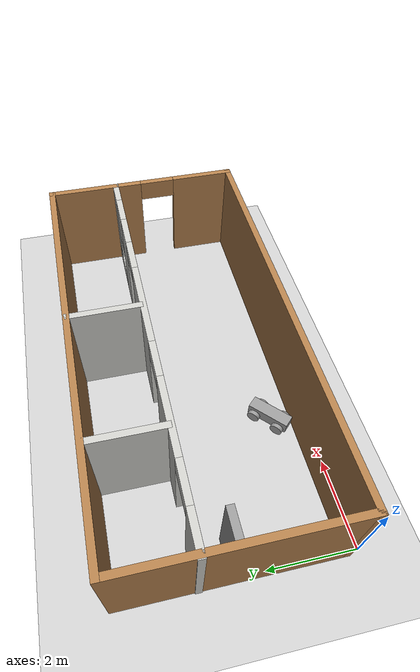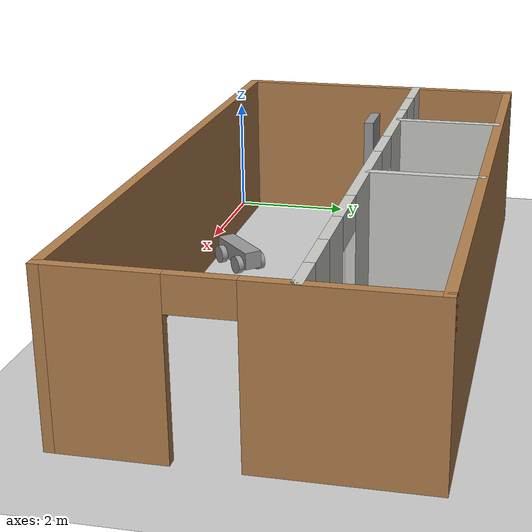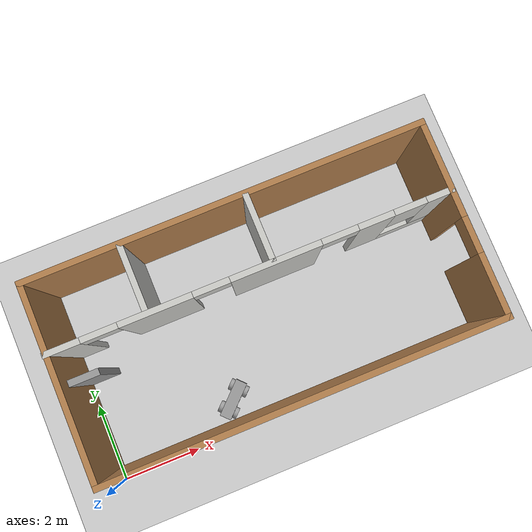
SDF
<sdf version="1.7">
 <world name="default">
  <plugin name="hello" filename="libhello.so"/>
  <light name="sun" type="directional">
   <pose>0 0 10 0 -0 0</pose>
   <diffuse>0.8 0.8 0.8 1</diffuse>
   <specular>0.2 0.2 0.2 1</specular>
   <attenuation>
    <range>1000</range>
    <constant>0.9</constant>
    <linear>0.01</linear>
    <quadratic>0.001</quadratic>
   </attenuation>
   <direction>-0.5 0.1 -0.9</direction>
   <spot><inner_angle>0</inner_angle><outer_angle>0</outer_angle><falloff>0</falloff></spot>
  </light>
  <model name="ground_plane">
   <static>1</static>
   <link name="link">
    <collision name="collision">
     <geometry><plane><normal>0 0 1</normal><size>100 100</size></plane></geometry>
     <surface>
      <contact><collide_bitmask>65535</collide_bitmask></contact>
      <friction><ode><mu>100</mu><mu2>50</mu2></ode></friction>
     </surface>
    </collision>
    <visual name="visual">
     <cast_shadows>0</cast_shadows>
     <geometry><plane><normal>0 0 1</normal><size>100 100</size></plane></geometry>
     <material>
      <script><uri>file://media/materials/scripts/gazebo.material</uri><name>Gazebo/Grey</name></script>
     </material>
    </visual>
   </link>
  </model>
  <gravity>0 0 -9.8</gravity>
  <magnetic_field>6e-06 2.3e-05 -4.2e-05</magnetic_field>
  <atmosphere type="adiabatic"/>
  <physics type="ode">
   <max_step_size>0.001</max_step_size>
   <real_time_factor>1</real_time_factor>
   <real_time_update_rate>1000</real_time_update_rate>
  </physics>
  <scene><ambient>0.4 0.4 0.4 1</ambient><background>0.7 0.7 0.7 1</background><shadows>1</shadows></scene>
  <spherical_coordinates>
   <surface_model>EARTH_WGS84</surface_model>
   <latitude_deg>0</latitude_deg>
   <longitude_deg>0</longitude_deg>
   <elevation>0</elevation>
   <heading_deg>0</heading_deg>
  </spherical_coordinates>
  <model name="Building">
   <pose>4.9051 3.47625 0 0 -0 0</pose>
   <link name="Door_3">
    <collision name="Door_3_Collision">
     <geometry><box><size>0.9 0.17 2</size></box></geometry>
     <pose>0 0 1 0 -0 0</pose>
    </collision>
    <visual name="Door_3_Visual">
     <pose>0 0 1 0 -0 0</pose>
     <geometry><box><size>0.9 0.17 2</size></box></geometry>
     <material>
      <script><uri>file://media/materials/scripts/gazebo.material</uri><name>Gazebo/Grey</name></script>
     </material>
    </visual>
    <pose>-4.525 -0.8125 0 0 -0 0</pose>
   </link>
   <link name="Wall_0">
    <collision name="Wall_0_Collision">
     <geometry><box><size>10 0.15 2.5</size></box></geometry>
     <pose>0 0 1.25 0 -0 0</pose>
    </collision>
    <visual name="Wall_0_Visual">
     <pose>0 0 1.25 0 -0 0</pose>
     <geometry><box><size>10 0.15 2.5</size></box></geometry>
     <material>
      <script><uri>file://media/materials/scripts/gazebo.material</uri><name>Gazebo/Wood</name></script>
      <ambient>1 1 1 1</ambient>
     </material>
     <meta><layer>0</layer></meta>
    </visual>
    <pose>0.01 1.6475 0 0 -0 0</pose>
   </link>
   <link name="Wall_1">
    <pose>4.935 -0.7775 0 0 -0 -1.5708</pose>
    <visual name="Wall_1_Visual_0">
     <pose>-1.2675 0 1.25 0 -0 0</pose>
     <geometry><box><size>2.465 0.15 2.5</size></box></geometry>
     <material>
      <script><uri>file://media/materials/scripts/gazebo.material</uri><name>Gazebo/Wood</name></script>
      <ambient>1 1 1 1</ambient>
     </material>
     <meta><layer>0</layer></meta>
    </visual>
    <collision name="Wall_1_Collision_0">
     <geometry><box><size>2.465 0.15 2.5</size></box></geometry>
     <pose>-1.2675 0 1.25 0 -0 0</pose>
    </collision>
    <visual name="Wall_1_Visual_1">
     <pose>1.6825 0 1.25 0 -0 0</pose>
     <geometry><box><size>1.635 0.15 2.5</size></box></geometry>
     <material>
      <script><uri>file://media/materials/scripts/gazebo.material</uri><name>Gazebo/Wood</name></script>
      <ambient>1 1 1 1</ambient>
     </material>
     <meta><layer>0</layer></meta>
    </visual>
    <collision name="Wall_1_Collision_1">
     <geometry><box><size>1.635 0.15 2.5</size></box></geometry>
     <pose>1.6825 0 1.25 0 -0 0</pose>
    </collision>
    <visual name="Wall_1_Visual_2">
     <pose>0.415 0 2.25 0 -0 0</pose>
     <geometry><box><size>0.9 0.15 0.5</size></box></geometry>
     <material>
      <script><uri>file://media/materials/scripts/gazebo.material</uri><name>Gazebo/Wood</name></script>
      <ambient>1 1 1 1</ambient>
     </material>
     <meta><layer>0</layer></meta>
    </visual>
    <collision name="Wall_1_Collision_2">
     <geometry><box><size>0.9 0.15 0.5</size></box></geometry>
     <pose>0.415 0 2.25 0 -0 0</pose>
    </collision>
   </link>
   <link name="Wall_10">
    <collision name="Wall_10_Collision">
     <geometry><box><size>1.75 0.15 2.5</size></box></geometry>
     <pose>0 0 1.25 0 -0 0</pose>
    </collision>
    <visual name="Wall_10_Visual">
     <pose>0 0 1.25 0 -0 0</pose>
     <geometry><box><size>1.75 0.15 2.5</size></box></geometry>
     <material>
      <script><uri>file://media/materials/scripts/gazebo.material</uri><name>Gazebo/CeilingTiled</name></script>
      <ambient>1 1 1 1</ambient>
     </material>
     <meta><layer>0</layer></meta>
    </visual>
    <pose>0.545 0.8175 0 0 -0 -1.5708</pose>
   </link>
   <link name="Wall_2">
    <collision name="Wall_2_Collision">
     <geometry><box><size>10 0.15 2.5</size></box></geometry>
     <pose>0 0 1.25 0 -0 0</pose>
    </collision>
    <visual name="Wall_2_Visual">
     <pose>0 0 1.25 0 -0 0</pose>
     <geometry><box><size>10 0.15 2.5</size></box></geometry>
     <material>
      <script><uri>file://media/materials/scripts/gazebo.material</uri><name>Gazebo/Wood</name></script>
      <ambient>1 1 1 1</ambient>
     </material>
     <meta><layer>0</layer></meta>
    </visual>
    <pose>0.01 -3.2025 0 0 -0 3.14159</pose>
   </link>
   <link name="Wall_3">
    <collision name="Wall_3_Collision">
     <geometry><box><size>5 0.15 2.5</size></box></geometry>
     <pose>0 0 1.25 0 -0 0</pose>
    </collision>
    <visual name="Wall_3_Visual">
     <pose>0 0 1.25 0 -0 0</pose>
     <geometry><box><size>5 0.15 2.5</size></box></geometry>
     <material>
      <script><uri>file://media/materials/scripts/gazebo.material</uri><name>Gazebo/Wood</name></script>
      <ambient>1 1 1 1</ambient>
     </material>
     <meta><layer>0</layer></meta>
    </visual>
    <pose>-4.915 -0.7775 0 0 -0 1.5708</pose>
   </link>
   <link name="Wall_6">
    <pose>-0.01 -0.0625 0 0 -0 0</pose>
    <visual name="Wall_6_Visual_0">
     <pose>-4.5525 0 1.25 0 -0 0</pose>
     <geometry><box><size>0.895 0.15 2.5</size></box></geometry>
     <material>
      <script><uri>file://media/materials/scripts/gazebo.material</uri><name>Gazebo/CeilingTiled</name></script>
      <ambient>1 1 1 1</ambient>
     </material>
     <meta><layer>0</layer></meta>
    </visual>
    <collision name="Wall_6_Collision_0">
     <geometry><box><size>0.895 0.15 2.5</size></box></geometry>
     <pose>-4.5525 0 1.25 0 -0 0</pose>
    </collision>
    <visual name="Wall_6_Visual_1">
     <pose>-2.305 0 1.25 0 -0 0</pose>
     <geometry><box><size>1.8 0.15 2.5</size></box></geometry>
     <material>
      <script><uri>file://media/materials/scripts/gazebo.material</uri><name>Gazebo/CeilingTiled</name></script>
      <ambient>1 1 1 1</ambient>
     </material>
     <meta><layer>0</layer></meta>
    </visual>
    <collision name="Wall_6_Collision_1">
     <geometry><box><size>1.8 0.15 2.5</size></box></geometry>
     <pose>-2.305 0 1.25 0 -0 0</pose>
    </collision>
    <visual name="Wall_6_Visual_2">
     <pose>0.615 0 1.25 0 -0 0</pose>
     <geometry><box><size>2.24 0.15 2.5</size></box></geometry>
     <material>
      <script><uri>file://media/materials/scripts/gazebo.material</uri><name>Gazebo/CeilingTiled</name></script>
      <ambient>1 1 1 1</ambient>
     </material>
     <meta><layer>0</layer></meta>
    </visual>
    <collision name="Wall_6_Collision_2">
     <geometry><box><size>2.24 0.15 2.5</size></box></geometry>
     <pose>0.615 0 1.25 0 -0 0</pose>
    </collision>
    <visual name="Wall_6_Visual_3">
     <pose>3.075 0 1.25 0 -0 0</pose>
     <geometry><box><size>0.88 0.15 2.5</size></box></geometry>
     <material>
      <script><uri>file://media/materials/scripts/gazebo.material</uri><name>Gazebo/CeilingTiled</name></script>
      <ambient>1 1 1 1</ambient>
     </material>
     <meta><layer>0</layer></meta>
    </visual>
    <collision name="Wall_6_Collision_3">
     <geometry><box><size>0.88 0.15 2.5</size></box></geometry>
     <pose>3.075 0 1.25 0 -0 0</pose>
    </collision>
    <visual name="Wall_6_Visual_4">
     <pose>4.2575 0 0.25 0 -0 0</pose>
     <geometry><box><size>1.485 0.15 0.5</size></box></geometry>
     <material>
      <script><uri>file://media/materials/scripts/gazebo.material</uri><name>Gazebo/CeilingTiled</name></script>
      <ambient>1 1 1 1</ambient>
     </material>
     <meta><layer>0</layer></meta>
    </visual>
    <collision name="Wall_6_Collision_4">
     <geometry><box><size>1.485 0.15 0.5</size></box></geometry>
     <pose>4.2575 0 0.25 0 -0 0</pose>
    </collision>
    <visual name="Wall_6_Visual_5">
     <pose>4.6575 0 1.5 0 -0 0</pose>
     <geometry><box><size>0.685 0.15 2</size></box></geometry>
     <material>
      <script><uri>file://media/materials/scripts/gazebo.material</uri><name>Gazebo/CeilingTiled</name></script>
      <ambient>1 1 1 1</ambient>
     </material>
     <meta><layer>0</layer></meta>
    </visual>
    <collision name="Wall_6_Collision_5">
     <geometry><box><size>0.685 0.15 2</size></box></geometry>
     <pose>4.6575 0 1.5 0 -0 0</pose>
    </collision>
    <visual name="Wall_6_Visual_6">
     <pose>3.915 0 1.9 0 -0 0</pose>
     <geometry><box><size>0.8 0.15 1.2</size></box></geometry>
     <material>
      <script><uri>file://media/materials/scripts/gazebo.material</uri><name>Gazebo/CeilingTiled</name></script>
      <ambient>1 1 1 1</ambient>
     </material>
     <meta><layer>0</layer></meta>
    </visual>
    <collision name="Wall_6_Collision_6">
     <geometry><box><size>0.8 0.15 1.2</size></box></geometry>
     <pose>3.915 0 1.9 0 -0 0</pose>
    </collision>
    <visual name="Wall_6_Visual_7">
     <pose>-3.655 0 2.25 0 -0 0</pose>
     <geometry><box><size>0.9 0.15 0.5</size></box></geometry>
     <material>
      <script><uri>file://media/materials/scripts/gazebo.material</uri><name>Gazebo/CeilingTiled</name></script>
      <ambient>1 1 1 1</ambient>
     </material>
     <meta><layer>0</layer></meta>
    </visual>
    <collision name="Wall_6_Collision_7">
     <geometry><box><size>0.9 0.15 0.5</size></box></geometry>
     <pose>-3.655 0 2.25 0 -0 0</pose>
    </collision>
    <visual name="Wall_6_Visual_8">
     <pose>-0.955 0 2.25 0 -0 0</pose>
     <geometry><box><size>0.9 0.15 0.5</size></box></geometry>
     <material>
      <script><uri>file://media/materials/scripts/gazebo.material</uri><name>Gazebo/CeilingTiled</name></script>
      <ambient>1 1 1 1</ambient>
     </material>
     <meta><layer>0</layer></meta>
    </visual>
    <collision name="Wall_6_Collision_8">
     <geometry><box><size>0.9 0.15 0.5</size></box></geometry>
     <pose>-0.955 0 2.25 0 -0 0</pose>
    </collision>
    <visual name="Wall_6_Visual_9">
     <pose>2.185 0 2.25 0 -0 0</pose>
     <geometry><box><size>0.9 0.15 0.5</size></box></geometry>
     <material>
      <script><uri>file://media/materials/scripts/gazebo.material</uri><name>Gazebo/CeilingTiled</name></script>
      <ambient>1 1 1 1</ambient>
     </material>
     <meta><layer>0</layer></meta>
    </visual>
    <collision name="Wall_6_Collision_9">
     <geometry><box><size>0.9 0.15 0.5</size></box></geometry>
     <pose>2.185 0 2.25 0 -0 0</pose>
    </collision>
   </link>
   <link name="Wall_8">
    <collision name="Wall_8_Collision">
     <geometry><box><size>1.75 0.15 2.5</size></box></geometry>
     <pose>0 0 1.25 0 -0 0</pose>
    </collision>
    <visual name="Wall_8_Visual">
     <pose>0 0 1.25 0 -0 0</pose>
     <geometry><box><size>1.75 0.15 2.5</size></box></geometry>
     <material>
      <script><uri>file://media/materials/scripts/gazebo.material</uri><name>Gazebo/CeilingTiled</name></script>
      <ambient>1 1 1 1</ambient>
     </material>
     <meta><layer>0</layer></meta>
    </visual>
    <pose>-2.525 0.7975 0 0 -0 -1.5708</pose>
   </link>
   <static>1</static>
  </model>
  <model name="HumanoidRobot">
   <link name="link_0">
    <inertial>
     <mass>1</mass>
     <inertia>
      <ixx>0.166667</ixx>
      <ixy>0</ixy>
      <ixz>0</ixz>
      <iyy>0.166667</iyy>
      <iyz>0</iyz>
      <izz>0.166667</izz>
     </inertia>
    </inertial>
    <pose>-1.83737 3.32183 1.03724 0.010962 0.070414 0.002619</pose>
    <visual name="visual">
     <geometry><box><size>1 0.3 0.3</size></box></geometry>
     <material>
      <lighting>1</lighting>
      <script><uri>file://media/materials/scripts/gazebo.material</uri><name>Gazebo/Grey</name></script>
      <shader type="pixel"><normal_map>__default__</normal_map></shader>
      <ambient>0.3 0.3 0.3 1</ambient>
      <diffuse>0.7 0.7 0.7 1</diffuse>
      <specular>0.01 0.01 0.01 1</specular>
      <emissive>0 0 0 1</emissive>
     </material>
    </visual>
    <collision name="collision">
     <geometry><box><size>1 0.3 0.3</size></box></geometry>
     <surface>
      <friction>
       <ode><mu>1</mu><mu2>1</mu2><fdir1>0 0 0</fdir1><slip1>0</slip1><slip2>0</slip2></ode>
       <torsional>
        <coefficient>1</coefficient>
        <patch_radius>0</patch_radius>
        <surface_radius>0</surface_radius>
        <use_patch_radius>1</use_patch_radius>
        <ode><slip>0</slip></ode>
       </torsional>
      </friction>
      <bounce><restitution_coefficient>0</restitution_coefficient><threshold>1e+06</threshold></bounce>
      <contact>
       <collide_without_contact>0</collide_without_contact>
       <collide_without_contact_bitmask>1</collide_without_contact_bitmask>
       <collide_bitmask>1</collide_bitmask>
       <ode>
        <soft_cfm>0</soft_cfm>
        <soft_erp>0.2</soft_erp>
        <kp>1e+13</kp>
        <kd>1</kd>
        <max_vel>0.01</max_vel>
        <min_depth>0</min_depth>
       </ode>
       <bullet>
        <split_impulse>1</split_impulse>
        <split_impulse_penetration_threshold>-0.01</split_impulse_penetration_threshold>
        <soft_cfm>0</soft_cfm>
        <soft_erp>0.2</soft_erp>
        <kp>1e+13</kp>
        <kd>1</kd>
       </bullet>
      </contact>
     </surface>
    </collision>
   </link>
   <link name="link_1">
    <inertial>
     <mass>1</mass>
     <inertia><ixx>0.145833</ixx><ixy>0</ixy><ixz>0</ixz><iyy>0.145833</iyy><iyz>0</iyz><izz>0.125</izz></inertia>
    </inertial>
    <pose>-1.54552 3.52368 0.918574 0.010962 0.070414 0.002619</pose>
    <visual name="visual">
     <pose>0 0 0 1.5702 -0 0</pose>
     <geometry><cylinder><radius>0.15</radius><length>0.1</length></cylinder></geometry>
     <material>
      <lighting>1</lighting>
      <script><uri>file://media/materials/scripts/gazebo.material</uri><name>Gazebo/Grey</name></script>
      <shader type="pixel"><normal_map>__default__</normal_map></shader>
      <ambient>0.3 0.3 0.3 1</ambient>
      <diffuse>0.7 0.7 0.7 1</diffuse>
      <specular>0.01 0.01 0.01 1</specular>
      <emissive>0 0 0 1</emissive>
     </material>
    </visual>
    <collision name="collision">
     <pose>0 0 0 1.5702 -0 0</pose>
     <geometry><cylinder><radius>0.15</radius><length>0.1</length></cylinder></geometry>
     <surface>
      <friction>
       <ode><mu>1</mu><mu2>1</mu2><fdir1>0 0 0</fdir1><slip1>0</slip1><slip2>0</slip2></ode>
       <torsional>
        <coefficient>1</coefficient>
        <patch_radius>0</patch_radius>
        <surface_radius>0</surface_radius>
        <use_patch_radius>1</use_patch_radius>
        <ode><slip>0</slip></ode>
       </torsional>
      </friction>
      <bounce><restitution_coefficient>0</restitution_coefficient><threshold>1e+06</threshold></bounce>
      <contact>
       <collide_without_contact>0</collide_without_contact>
       <collide_without_contact_bitmask>1</collide_without_contact_bitmask>
       <collide_bitmask>1</collide_bitmask>
       <ode>
        <soft_cfm>0</soft_cfm>
        <soft_erp>0.2</soft_erp>
        <kp>1e+13</kp>
        <kd>1</kd>
        <max_vel>0.01</max_vel>
        <min_depth>0</min_depth>
       </ode>
       <bullet>
        <split_impulse>1</split_impulse>
        <split_impulse_penetration_threshold>-0.01</split_impulse_penetration_threshold>
        <soft_cfm>0</soft_cfm>
        <soft_erp>0.2</soft_erp>
        <kp>1e+13</kp>
        <kd>1</kd>
       </bullet>
      </contact>
     </surface>
    </collision>
   </link>
   <link name="link_1_clone">
    <inertial>
     <mass>1</mass>
     <inertia><ixx>0.145833</ixx><ixy>0</ixy><ixz>0</ixz><iyy>0.145833</iyy><iyz>0</iyz><izz>0.125</izz></inertia>
    </inertial>
    <pose>-2.14403 3.52211 0.960787 0.022192 0.140796 0.006036</pose>
    <visual name="visual">
     <pose>0 0 0 1.5702 -0 0</pose>
     <geometry><cylinder><radius>0.15</radius><length>0.1</length></cylinder></geometry>
     <material>
      <lighting>1</lighting>
      <script><uri>file://media/materials/scripts/gazebo.material</uri><name>Gazebo/Grey</name></script>
      <shader type="pixel"><normal_map>__default__</normal_map></shader>
      <ambient>0.3 0.3 0.3 1</ambient>
      <diffuse>0.7 0.7 0.7 1</diffuse>
      <specular>0.01 0.01 0.01 1</specular>
      <emissive>0 0 0 1</emissive>
     </material>
    </visual>
    <collision name="collision">
     <pose>0 0 0 1.5702 -0 0</pose>
     <geometry><cylinder><radius>0.15</radius><length>0.1</length></cylinder></geometry>
     <surface>
      <friction>
       <ode><mu>1</mu><mu2>1</mu2><fdir1>0 0 0</fdir1><slip1>0</slip1><slip2>0</slip2></ode>
       <torsional>
        <coefficient>1</coefficient>
        <patch_radius>0</patch_radius>
        <surface_radius>0</surface_radius>
        <use_patch_radius>1</use_patch_radius>
        <ode><slip>0</slip></ode>
       </torsional>
      </friction>
      <bounce><restitution_coefficient>0</restitution_coefficient><threshold>1e+06</threshold></bounce>
      <contact>
       <collide_without_contact>0</collide_without_contact>
       <collide_without_contact_bitmask>1</collide_without_contact_bitmask>
       <collide_bitmask>1</collide_bitmask>
       <ode>
        <soft_cfm>0</soft_cfm>
        <soft_erp>0.2</soft_erp>
        <kp>1e+13</kp>
        <kd>1</kd>
        <max_vel>0.01</max_vel>
        <min_depth>0</min_depth>
       </ode>
       <bullet>
        <split_impulse>1</split_impulse>
        <split_impulse_penetration_threshold>-0.01</split_impulse_penetration_threshold>
        <soft_cfm>0</soft_cfm>
        <soft_erp>0.2</soft_erp>
        <kp>1e+13</kp>
        <kd>1</kd>
       </bullet>
      </contact>
     </surface>
    </collision>
   </link>
   <link name="link_1_clone_clone">
    <inertial>
     <mass>1</mass>
     <inertia><ixx>0.145833</ixx><ixy>0</ixy><ixz>0</ixz><iyy>0.145833</iyy><iyz>0</iyz><izz>0.125</izz></inertia>
    </inertial>
    <pose>-1.54478 3.1237 0.9142 0.033809 0.211133 0.010304</pose>
    <visual name="visual">
     <pose>0 0 0 1.5702 -0 0</pose>
     <geometry><cylinder><radius>0.15</radius><length>0.1</length></cylinder></geometry>
     <material>
      <lighting>1</lighting>
      <script><uri>file://media/materials/scripts/gazebo.material</uri><name>Gazebo/Grey</name></script>
      <shader type="pixel"><normal_map>__default__</normal_map></shader>
      <ambient>0.3 0.3 0.3 1</ambient>
      <diffuse>0.7 0.7 0.7 1</diffuse>
      <specular>0.01 0.01 0.01 1</specular>
      <emissive>0 0 0 1</emissive>
     </material>
    </visual>
    <collision name="collision">
     <pose>0 0 0 1.5702 -0 0</pose>
     <geometry><cylinder><radius>0.15</radius><length>0.1</length></cylinder></geometry>
     <surface>
      <friction>
       <ode><mu>1</mu><mu2>1</mu2><fdir1>0 0 0</fdir1><slip1>0</slip1><slip2>0</slip2></ode>
       <torsional>
        <coefficient>1</coefficient>
        <patch_radius>0</patch_radius>
        <surface_radius>0</surface_radius>
        <use_patch_radius>1</use_patch_radius>
        <ode><slip>0</slip></ode>
       </torsional>
      </friction>
      <bounce><restitution_coefficient>0</restitution_coefficient><threshold>1e+06</threshold></bounce>
      <contact>
       <collide_without_contact>0</collide_without_contact>
       <collide_without_contact_bitmask>1</collide_without_contact_bitmask>
       <collide_bitmask>1</collide_bitmask>
       <ode>
        <soft_cfm>0</soft_cfm>
        <soft_erp>0.2</soft_erp>
        <kp>1e+13</kp>
        <kd>1</kd>
        <max_vel>0.01</max_vel>
        <min_depth>0</min_depth>
       </ode>
       <bullet>
        <split_impulse>1</split_impulse>
        <split_impulse_penetration_threshold>-0.01</split_impulse_penetration_threshold>
        <soft_cfm>0</soft_cfm>
        <soft_erp>0.2</soft_erp>
        <kp>1e+13</kp>
        <kd>1</kd>
       </bullet>
      </contact>
     </surface>
    </collision>
   </link>
   <link name="link_1_clone_clone_clone">
    <inertial>
     <mass>1</mass>
     <inertia><ixx>0.145833</ixx><ixy>0</ixy><ixz>0</ixz><iyy>0.145833</iyy><iyz>0</iyz><izz>0.125</izz></inertia>
    </inertial>
    <pose>-2.16412 3.12671 0.962384 0.044169 0.037219 0.004374</pose>
    <visual name="visual">
     <pose>0 0 0 1.5702 -0 0</pose>
     <geometry><cylinder><radius>0.15</radius><length>0.1</length></cylinder></geometry>
     <material>
      <lighting>1</lighting>
      <script><uri>file://media/materials/scripts/gazebo.material</uri><name>Gazebo/Grey</name></script>
      <shader type="pixel"><normal_map>__default__</normal_map></shader>
      <ambient>0.3 0.3 0.3 1</ambient>
      <diffuse>0.7 0.7 0.7 1</diffuse>
      <specular>0.01 0.01 0.01 1</specular>
      <emissive>0 0 0 1</emissive>
     </material>
    </visual>
    <collision name="collision">
     <pose>0 0 0 1.5702 -0 0</pose>
     <geometry><cylinder><radius>0.15</radius><length>0.1</length></cylinder></geometry>
     <surface>
      <friction>
       <ode><mu>1</mu><mu2>1</mu2><fdir1>0 0 0</fdir1><slip1>0</slip1><slip2>0</slip2></ode>
       <torsional>
        <coefficient>1</coefficient>
        <patch_radius>0</patch_radius>
        <surface_radius>0</surface_radius>
        <use_patch_radius>1</use_patch_radius>
        <ode><slip>0</slip></ode>
       </torsional>
      </friction>
      <bounce><restitution_coefficient>0</restitution_coefficient><threshold>1e+06</threshold></bounce>
      <contact>
       <collide_without_contact>0</collide_without_contact>
       <collide_without_contact_bitmask>1</collide_without_contact_bitmask>
       <collide_bitmask>1</collide_bitmask>
       <ode>
        <soft_cfm>0</soft_cfm>
        <soft_erp>0.2</soft_erp>
        <kp>1e+13</kp>
        <kd>1</kd>
        <max_vel>0.01</max_vel>
        <min_depth>0</min_depth>
       </ode>
       <bullet>
        <split_impulse>1</split_impulse>
        <split_impulse_penetration_threshold>-0.01</split_impulse_penetration_threshold>
        <soft_cfm>0</soft_cfm>
        <soft_erp>0.2</soft_erp>
        <kp>1e+13</kp>
        <kd>1</kd>
       </bullet>
      </contact>
     </surface>
    </collision>
   </link>
   <joint name="link_0_JOINT_1" type="revolute">
    <parent>link_0</parent>
    <child>link_1</child>
    <axis>
     <xyz>0 1 0</xyz>
     <limit>
      <lower>-1.79769e+308</lower>
      <upper>1.79769e+308</upper>
      <effort>-1</effort>
      <velocity>-1</velocity>
     </limit>
     <dynamics>
      <spring_reference>0</spring_reference>
      <spring_stiffness>0</spring_stiffness>
      <damping>0</damping>
     </dynamics>
    </axis>
    <physics>
     <ode><limit><cfm>0</cfm><erp>0.2</erp></limit><suspension><cfm>0</cfm><erp>0.2</erp></suspension></ode>
    </physics>
   </joint>
   <joint name="link_0_JOINT_2" type="revolute">
    <parent>link_0</parent>
    <child>link_1_clone</child>
    <axis>
     <xyz>0 1 0</xyz>
     <limit>
      <lower>-1.79769e+308</lower>
      <upper>1.79769e+308</upper>
      <effort>-1</effort>
      <velocity>-1</velocity>
     </limit>
     <dynamics>
      <spring_reference>0</spring_reference>
      <spring_stiffness>0</spring_stiffness>
      <damping>0</damping>
      <friction>0</friction>
     </dynamics>
    </axis>
    <physics>
     <ode><limit><cfm>0</cfm><erp>0.2</erp></limit><suspension><cfm>0</cfm><erp>0.2</erp></suspension></ode>
    </physics>
   </joint>
   <joint name="link_0_JOINT_3" type="revolute">
    <parent>link_0</parent>
    <child>link_1_clone_clone</child>
    <axis>
     <xyz>-0 -1 -0</xyz>
     <limit>
      <lower>-1.79769e+308</lower>
      <upper>1.79769e+308</upper>
      <effort>-1</effort>
      <velocity>-1</velocity>
     </limit>
     <dynamics>
      <spring_reference>0</spring_reference>
      <spring_stiffness>0</spring_stiffness>
      <damping>0</damping>
     </dynamics>
    </axis>
    <physics>
     <ode><limit><cfm>0</cfm><erp>0.2</erp></limit><suspension><cfm>0</cfm><erp>0.2</erp></suspension></ode>
    </physics>
   </joint>
   <joint name="link_0_JOINT_4" type="revolute">
    <parent>link_0</parent>
    <child>link_1_clone_clone_clone</child>
    <axis>
     <xyz>-0 -1 -0</xyz>
     <limit>
      <lower>-1.79769e+308</lower>
      <upper>1.79769e+308</upper>
      <effort>-1</effort>
      <velocity>-1</velocity>
     </limit>
     <dynamics>
      <spring_reference>0</spring_reference>
      <spring_stiffness>0</spring_stiffness>
      <damping>0</damping>
     </dynamics>
    </axis>
    <physics>
     <ode><limit><cfm>0</cfm><erp>0.2</erp></limit><suspension><cfm>0</cfm><erp>0.2</erp></suspension></ode>
    </physics>
   </joint>
   <static>0</static>
   <pose>-0.348835 1.96387 -0.612684 -0.012965 -0.06988 -2.38323</pose>
  </model>
 </world>
</sdf>
